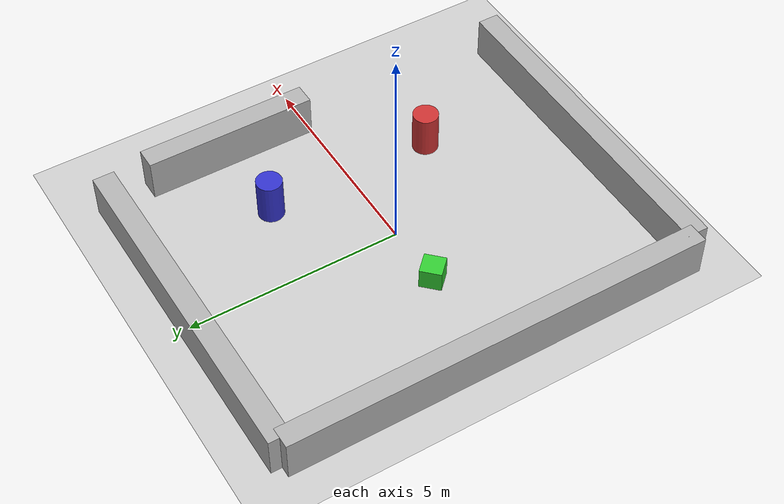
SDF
<?xml version="1.0" ?>
<sdf version="1.8">
  <world name="default">

    <plugin
      filename="gz-sim-physics-system"
      name="gz::sim::systems::Physics">
    </plugin>

    <plugin
      filename="gz-sim-user-commands-system"
      name="gz::sim::systems::UserCommands">
    </plugin>

    <plugin
      filename="gz-sim-scene-broadcaster-system"
      name="gz::sim::systems::SceneBroadcaster">
    </plugin>

    <plugin
      filename="gz-sim-sensors-system"
      name="gz::sim::systems::Sensors">
      <render_engine>ogre2</render_engine>
    </plugin>

    <plugin
      filename="gz-sim-imu-system"
      name="gz::sim::systems::Imu">
    </plugin>

    <light type="directional" name="sun">
      <cast_shadows>true</cast_shadows>
      <pose>0 0 10 0 0 0</pose>
      <diffuse>0.8 0.8 0.8 1</diffuse>
      <specular>0.2 0.2 0.2 1</specular>
      <attenuation>
        <range>1000</range>
        <constant>0.9</constant>
        <linear>0.01</linear>
        <quadratic>0.001</quadratic>
      </attenuation>
      <direction>-0.5 0.1 -0.9</direction>
    </light>

    <model name="ground_plane">
      <static>true</static>
      <link name="link">
        <collision name="collision">
          <geometry>
            <plane>
              <normal>0 0 1</normal>
              <size>100 100</size>
            </plane>
          </geometry>
        </collision>
        <visual name="visual">
          <geometry>
            <plane>
              <normal>0 0 1</normal>
              <size>100 100</size>
            </plane>
          </geometry>
          <material>
            <ambient>0.8 0.8 0.8 1</ambient>
            <diffuse>0.8 0.8 0.8 1</diffuse>
            <specular>0.8 0.8 0.8 1</specular>
          </material>
        </visual>
      </link>
    </model>

    <model name='wall_1'>
        <static>true</static>
        <pose>-4 0 0.5 0 0 0</pose>
        <link name='box'>
            <visual name='visual'>
                <geometry><box><size>0.5 10 1</size></box></geometry>
                <material><ambient>0.3 0.3 0.3 1</ambient><diffuse>0.7 0.7 0.7 1</diffuse></material>
            </visual>
            <collision name='collision'>
                <geometry><box><size>0.5 10 1</size></box></geometry>
            </collision>
        </link>
    </model>

    <model name='wall_2'>
        <static>true</static>
        <pose>0 5 0.5 0 0 0</pose>
        <link name='box'>
            <visual name='visual'>
                <geometry><box><size>8 0.5 1</size></box></geometry>
                <material><ambient>0.3 0.3 0.3 1</ambient><diffuse>0.7 0.7 0.7 1</diffuse></material>
            </visual>
            <collision name='collision'>
                <geometry><box><size>8 0.5 1</size></box></geometry>
            </collision>
        </link>
    </model>

    <model name='wall_3'>
        <static>true</static>
        <pose>0 -5 0.5 0 0 0</pose>
        <link name='box'>
            <visual name='visual'>
                <geometry><box><size>8 0.5 1</size></box></geometry>
                <material><ambient>0.3 0.3 0.3 1</ambient><diffuse>0.7 0.7 0.7 1</diffuse></material>
            </visual>
            <collision name='collision'>
                <geometry><box><size>8 0.5 1</size></box></geometry>
            </collision>
        </link>
    </model>

    <model name='wall_4'>
        <static>true</static>
        <pose>4 2 0.5 0 0 0</pose>
        <link name='box'>
            <visual name='visual'>
                <geometry><box><size>0.5 4 1</size></box></geometry>
                <material><ambient>0.3 0.3 0.3 1</ambient><diffuse>0.7 0.7 0.7 1</diffuse></material>
            </visual>
            <collision name='collision'>
                <geometry><box><size>0.5 4 1</size></box></geometry>
            </collision>
        </link>
    </model>

    <model name='cylinder_1'>
        <static>true</static>
        <pose>2 -2 0.5 0 0 0</pose>
        <link name='cylinder'>
            <visual name='visual'>
                <geometry><cylinder><radius>0.3</radius><length>1</length></cylinder></geometry>
                <material><ambient>0.8 0.2 0.2 1</ambient><diffuse>0.8 0.2 0.2 1</diffuse></material>
            </visual>
            <collision name='collision'>
                <geometry><cylinder><radius>0.3</radius><length>1</length></cylinder></geometry>
            </collision>
        </link>
    </model>

    <model name='cylinder_2'>
        <static>true</static>
        <pose>2 2 0.5 0 0 0</pose>
        <link name='cylinder'>
            <visual name='visual'>
                <geometry><cylinder><radius>0.3</radius><length>1</length></cylinder></geometry>
                <material><ambient>0.2 0.2 0.8 1</ambient><diffuse>0.2 0.2 0.8 1</diffuse></material>
            </visual>
            <collision name='collision'>
                <geometry><cylinder><radius>0.3</radius><length>1</length></cylinder></geometry>
            </collision>
        </link>
    </model>

    <model name='box_obstacle'>
        <static>true</static>
        <pose>-1.5 0 0.25 0 0 0.785</pose>
        <link name='box'>
            <visual name='visual'>
                <geometry><box><size>0.5 0.5 0.5</size></box></geometry>
                <material><ambient>0.2 0.8 0.2 1</ambient><diffuse>0.2 0.8 0.2 1</diffuse></material>
            </visual>
            <collision name='collision'>
                <geometry><box><size>0.5 0.5 0.5</size></box></geometry>
            </collision>
        </link>
    </model>

  </world>
</sdf>
